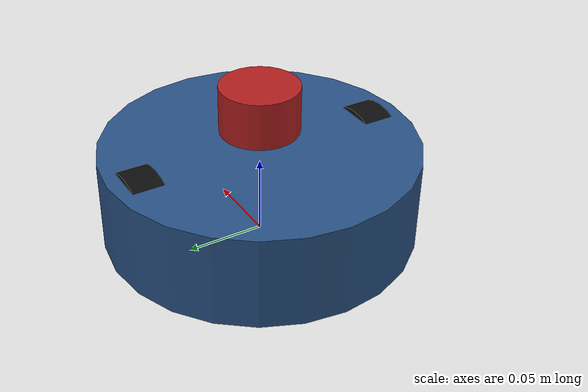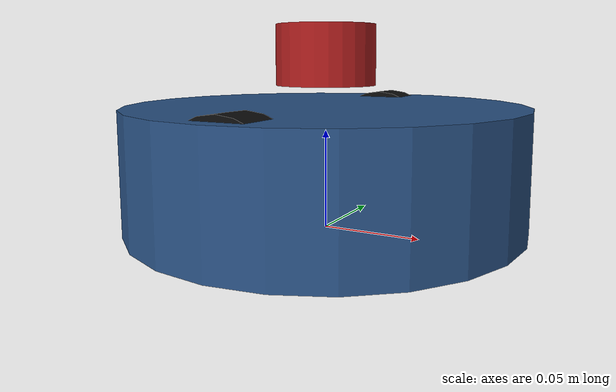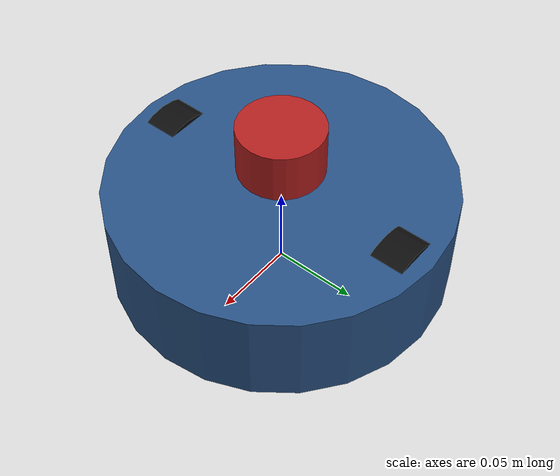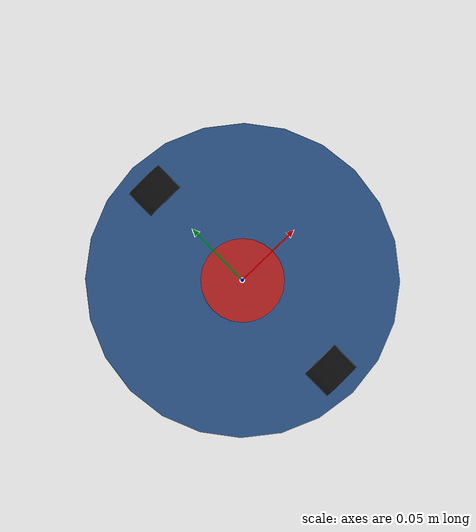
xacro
<?xml version="1.0"?>
<robot xmlns:xacro="http://www.ros.org/wiki/xacro" name="indoor_robot">
  <xacro:property name="wheel_radius" value="0.033"/>
  <xacro:property name="wheel_width" value="0.020"/>
  <xacro:property name="wheel_separation" value="0.160"/>
  <xacro:property name="base_radius" value="0.10"/>
  <xacro:property name="base_height" value="0.06"/>
  <xacro:property name="base_z" value="0.033"/>
  <xacro:property name="base_mass" value="3.0"/>
  <xacro:property name="wheel_mass" value="0.15"/>
  <xacro:property name="caster_radius" value="0.012"/>
  <xacro:property name="caster_mass" value="0.05"/>

  <material name="body_blue">
    <color rgba="0.16 0.32 0.52 1"/>
  </material>
  <material name="wheel_black">
    <color rgba="0.05 0.05 0.05 1"/>
  </material>
  <material name="laser_red">
    <color rgba="0.70 0.12 0.12 1"/>
  </material>
  <material name="dark">
    <color rgba="0.15 0.15 0.15 1"/>
  </material>

  <link name="base_footprint"/>

  <joint name="base_joint" type="fixed">
    <parent link="base_footprint"/>
    <child link="base_link"/>
    <origin xyz="0 0 ${base_z}" rpy="0 0 0"/>
  </joint>

  <link name="base_link">
    <visual>
      <geometry>
        <cylinder radius="${base_radius}" length="${base_height}"/>
      </geometry>
      <material name="body_blue"/>
    </visual>
    <collision>
      <geometry>
        <cylinder radius="${base_radius}" length="${base_height}"/>
      </geometry>
    </collision>
    <inertial>
      <mass value="${base_mass}"/>
      <inertia
        ixx="${(base_mass * (3 * base_radius * base_radius + base_height * base_height)) / 12.0}"
        ixy="0.0" ixz="0.0"
        iyy="${(base_mass * (3 * base_radius * base_radius + base_height * base_height)) / 12.0}"
        iyz="0.0"
        izz="${0.5 * base_mass * base_radius * base_radius}"/>
    </inertial>
  </link>

  <xacro:macro name="wheel" params="prefix reflect">
    <link name="${prefix}_wheel_link">
      <visual>
        <origin xyz="0 0 0" rpy="-1.5707963 0 0"/>
        <geometry>
          <cylinder radius="${wheel_radius}" length="${wheel_width}"/>
        </geometry>
        <material name="wheel_black"/>
      </visual>
      <collision>
        <origin xyz="0 0 0" rpy="-1.5707963 0 0"/>
        <geometry>
          <cylinder radius="${wheel_radius}" length="${wheel_width}"/>
        </geometry>
      </collision>
      <inertial>
        <mass value="${wheel_mass}"/>
        <inertia
          ixx="${(wheel_mass * (3 * wheel_radius * wheel_radius + wheel_width * wheel_width)) / 12.0}"
          ixy="0.0" ixz="0.0"
          iyy="${0.5 * wheel_mass * wheel_radius * wheel_radius}"
          iyz="0.0"
          izz="${(wheel_mass * (3 * wheel_radius * wheel_radius + wheel_width * wheel_width)) / 12.0}"/>
      </inertial>
    </link>
    <joint name="${prefix}_wheel_joint" type="continuous">
      <parent link="base_link"/>
      <child link="${prefix}_wheel_link"/>
      <origin xyz="0 ${reflect * wheel_separation / 2.0} 0" rpy="0 0 0"/>
      <axis xyz="0 1 0"/>
    </joint>
  </xacro:macro>

  <xacro:wheel prefix="left" reflect="1"/>
  <xacro:wheel prefix="right" reflect="-1"/>

  <link name="caster_link">
    <visual>
      <geometry>
        <sphere radius="${caster_radius}"/>
      </geometry>
      <material name="dark"/>
    </visual>
    <collision>
      <geometry>
        <sphere radius="${caster_radius}"/>
      </geometry>
    </collision>
    <inertial>
      <mass value="${caster_mass}"/>
      <inertia
        ixx="${0.4 * caster_mass * caster_radius * caster_radius}"
        ixy="0.0" ixz="0.0"
        iyy="${0.4 * caster_mass * caster_radius * caster_radius}"
        iyz="0.0"
        izz="${0.4 * caster_mass * caster_radius * caster_radius}"/>
    </inertial>
  </link>
  <joint name="caster_joint" type="fixed">
    <parent link="base_link"/>
    <child link="caster_link"/>
    <origin xyz="-0.08 0 ${caster_radius - base_z}" rpy="0 0 0"/>
  </joint>

  <link name="laser_link">
    <visual>
      <geometry>
        <cylinder radius="0.025" length="0.030"/>
      </geometry>
      <material name="laser_red"/>
    </visual>
    <collision>
      <geometry>
        <cylinder radius="0.025" length="0.030"/>
      </geometry>
    </collision>
    <inertial>
      <mass value="0.10"/>
      <inertia ixx="0.00005" ixy="0.0" ixz="0.0" iyy="0.00005" iyz="0.0" izz="0.00008"/>
    </inertial>
  </link>
  <joint name="laser_joint" type="fixed">
    <parent link="base_link"/>
    <child link="laser_link"/>
    <origin xyz="0 0 0.055" rpy="0 0 0"/>
  </joint>

  <link name="imu_link">
    <inertial>
      <mass value="0.01"/>
      <inertia ixx="1e-6" ixy="0.0" ixz="0.0" iyy="1e-6" iyz="0.0" izz="1e-6"/>
    </inertial>
  </link>
  <joint name="imu_joint" type="fixed">
    <parent link="base_link"/>
    <child link="imu_link"/>
    <origin xyz="0 0 0" rpy="0 0 0"/>
  </joint>

  <gazebo reference="base_link">
    <material>Gazebo/Blue</material>
  </gazebo>
  <gazebo reference="left_wheel_link">
    <material>Gazebo/Black</material>
    <mu1>1.2</mu1>
    <mu2>0.2</mu2>
    <kp>1000000.0</kp>
    <kd>100.0</kd>
    <fdir1>1 0 0</fdir1>
  </gazebo>
  <gazebo reference="right_wheel_link">
    <material>Gazebo/Black</material>
    <mu1>1.2</mu1>
    <mu2>0.2</mu2>
    <kp>1000000.0</kp>
    <kd>100.0</kd>
    <fdir1>1 0 0</fdir1>
  </gazebo>
  <gazebo reference="caster_link">
    <material>Gazebo/DarkGrey</material>
    <mu1>0.01</mu1>
    <mu2>0.01</mu2>
    <kp>1000000.0</kp>
    <kd>10.0</kd>
  </gazebo>
  <gazebo reference="laser_link">
    <material>Gazebo/Red</material>
    <sensor name="lidar" type="ray">
      <always_on>true</always_on>
      <visualize>false</visualize>
      <update_rate>10</update_rate>
      <ray>
        <scan>
          <horizontal>
            <samples>360</samples>
            <resolution>1.0</resolution>
            <min_angle>-3.14159</min_angle>
            <max_angle>3.14159</max_angle>
          </horizontal>
        </scan>
        <range>
          <min>0.12</min>
          <max>8.0</max>
          <resolution>0.01</resolution>
        </range>
        <noise>
          <type>gaussian</type>
          <mean>0.0</mean>
          <stddev>0.01</stddev>
        </noise>
      </ray>
      <plugin name="lidar_plugin" filename="libgazebo_ros_ray_sensor.so">
        <ros>
          <remapping>~/out:=scan</remapping>
        </ros>
        <output_type>sensor_msgs/LaserScan</output_type>
        <frame_name>laser_link</frame_name>
      </plugin>
    </sensor>
  </gazebo>
  <gazebo reference="imu_link">
    <sensor name="imu" type="imu">
      <always_on>true</always_on>
      <update_rate>50</update_rate>
      <plugin name="imu_plugin" filename="libgazebo_ros_imu_sensor.so">
        <ros>
          <remapping>~/out:=imu</remapping>
        </ros>
        <initial_orientation_as_reference>false</initial_orientation_as_reference>
      </plugin>
    </sensor>
  </gazebo>
  <gazebo>
    <selfCollide>false</selfCollide>
    <plugin name="gazebo_ros_joint_state_publisher" filename="libgazebo_ros_joint_state_publisher.so">
      <update_rate>30</update_rate>
      <joint_name>left_wheel_joint</joint_name>
      <joint_name>right_wheel_joint</joint_name>
    </plugin>
    <plugin name="gazebo_ros_diff_drive" filename="libgazebo_ros_diff_drive.so">
      <ros>
        <remapping>cmd_vel:=cmd_vel</remapping>
        <remapping>odom:=odom</remapping>
      </ros>
      <update_rate>30</update_rate>
      <left_joint>left_wheel_joint</left_joint>
      <right_joint>right_wheel_joint</right_joint>
      <wheel_separation>${wheel_separation}</wheel_separation>
      <wheel_diameter>${wheel_radius * 2.0}</wheel_diameter>
      <max_wheel_torque>8</max_wheel_torque>
      <max_wheel_acceleration>2.0</max_wheel_acceleration>
      <command_topic>cmd_vel</command_topic>
      <odometry_topic>odom</odometry_topic>
      <odometry_frame>odom</odometry_frame>
      <robot_base_frame>base_footprint</robot_base_frame>
      <publish_odom>true</publish_odom>
      <publish_odom_tf>true</publish_odom_tf>
      <publish_wheel_tf>false</publish_wheel_tf>
    </plugin>
  </gazebo>
</robot>
